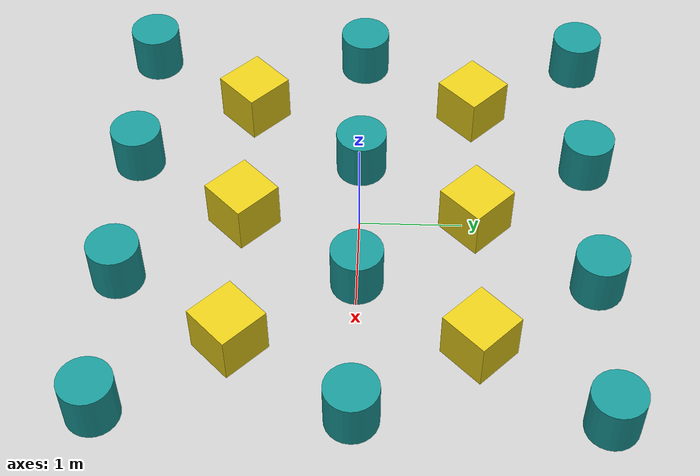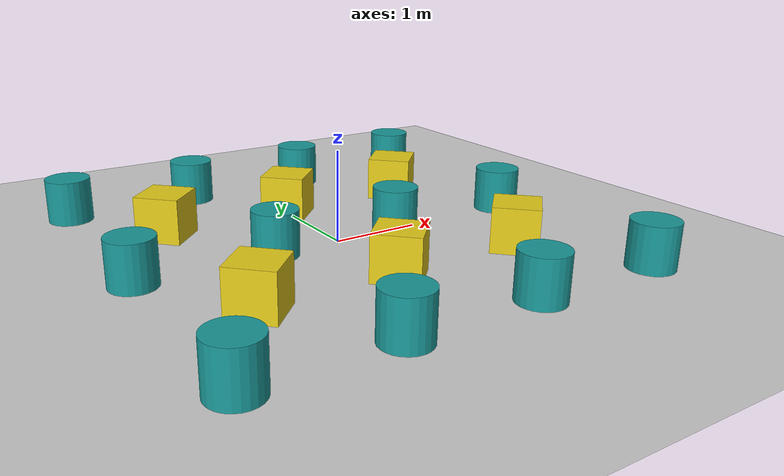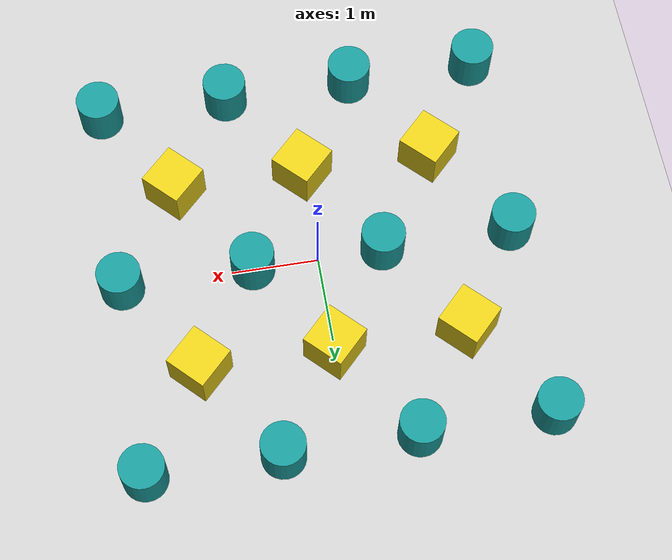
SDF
<sdf version="1.6">
 <world name="senaryo2_yogun">
  <physics type="ode">
   <max_step_size>0.001</max_step_size>
   <real_time_factor>1</real_time_factor>
   <real_time_update_rate>1000</real_time_update_rate>
  </physics>
  <scene><shadows>false</shadows></scene>
  <include><uri>model://ground_plane</uri></include>
  <include><uri>model://sun</uri></include>
  <model name="sutun_1">
   <static>true</static>
   <pose>-2.25 -2.25 0.25 0 0 0</pose>
   <link name="link">
    <collision name="collision">
     <geometry><cylinder><radius>0.25</radius><length>0.5</length></cylinder></geometry>
    </collision>
    <visual name="visual">
     <geometry><cylinder><radius>0.25</radius><length>0.5</length></cylinder></geometry>
     <material><ambient>0.1 0.6 0.6 1</ambient><diffuse>0.1 0.6 0.6 1</diffuse></material>
    </visual>
   </link>
  </model>
  <model name="sutun_2">
   <static>true</static>
   <pose>-0.75 -2.25 0.25 0 0 0</pose>
   <link name="link">
    <collision name="collision">
     <geometry><cylinder><radius>0.25</radius><length>0.5</length></cylinder></geometry>
    </collision>
    <visual name="visual">
     <geometry><cylinder><radius>0.25</radius><length>0.5</length></cylinder></geometry>
     <material><ambient>0.1 0.6 0.6 1</ambient><diffuse>0.1 0.6 0.6 1</diffuse></material>
    </visual>
   </link>
  </model>
  <model name="sutun_3">
   <static>true</static>
   <pose>0.75 -2.25 0.25 0 0 0</pose>
   <link name="link">
    <collision name="collision">
     <geometry><cylinder><radius>0.25</radius><length>0.5</length></cylinder></geometry>
    </collision>
    <visual name="visual">
     <geometry><cylinder><radius>0.25</radius><length>0.5</length></cylinder></geometry>
     <material><ambient>0.1 0.6 0.6 1</ambient><diffuse>0.1 0.6 0.6 1</diffuse></material>
    </visual>
   </link>
  </model>
  <model name="sutun_4">
   <static>true</static>
   <pose>2.25 -2.25 0.25 0 0 0</pose>
   <link name="link">
    <collision name="collision">
     <geometry><cylinder><radius>0.25</radius><length>0.5</length></cylinder></geometry>
    </collision>
    <visual name="visual">
     <geometry><cylinder><radius>0.25</radius><length>0.5</length></cylinder></geometry>
     <material><ambient>0.1 0.6 0.6 1</ambient><diffuse>0.1 0.6 0.6 1</diffuse></material>
    </visual>
   </link>
  </model>
  <model name="kutu_1">
   <static>true</static>
   <pose>-1.5 -1.125 0.25 0 0 0.7854</pose>
   <link name="link">
    <collision name="collision"><geometry><box><size>0.5 0.5 0.5</size></box></geometry></collision>
    <visual name="visual">
     <geometry><box><size>0.5 0.5 0.5</size></box></geometry>
     <material><ambient>0.9 0.8 0.1 1</ambient><diffuse>0.9 0.8 0.1 1</diffuse></material>
    </visual>
   </link>
  </model>
  <model name="kutu_2">
   <static>true</static>
   <pose>0.0 -1.125 0.25 0 0 0.7854</pose>
   <link name="link">
    <collision name="collision"><geometry><box><size>0.5 0.5 0.5</size></box></geometry></collision>
    <visual name="visual">
     <geometry><box><size>0.5 0.5 0.5</size></box></geometry>
     <material><ambient>0.9 0.8 0.1 1</ambient><diffuse>0.9 0.8 0.1 1</diffuse></material>
    </visual>
   </link>
  </model>
  <model name="kutu_3">
   <static>true</static>
   <pose>1.5 -1.125 0.25 0 0 0.7854</pose>
   <link name="link">
    <collision name="collision"><geometry><box><size>0.5 0.5 0.5</size></box></geometry></collision>
    <visual name="visual">
     <geometry><box><size>0.5 0.5 0.5</size></box></geometry>
     <material><ambient>0.9 0.8 0.1 1</ambient><diffuse>0.9 0.8 0.1 1</diffuse></material>
    </visual>
   </link>
  </model>
  <model name="sutun_5">
   <static>true</static>
   <pose>-2.25 0.0 0.25 0 0 0</pose>
   <link name="link">
    <collision name="collision">
     <geometry><cylinder><radius>0.25</radius><length>0.5</length></cylinder></geometry>
    </collision>
    <visual name="visual">
     <geometry><cylinder><radius>0.25</radius><length>0.5</length></cylinder></geometry>
     <material><ambient>0.1 0.6 0.6 1</ambient><diffuse>0.1 0.6 0.6 1</diffuse></material>
    </visual>
   </link>
  </model>
  <model name="sutun_6">
   <static>true</static>
   <pose>-0.75 0.0 0.25 0 0 0</pose>
   <link name="link">
    <collision name="collision">
     <geometry><cylinder><radius>0.25</radius><length>0.5</length></cylinder></geometry>
    </collision>
    <visual name="visual">
     <geometry><cylinder><radius>0.25</radius><length>0.5</length></cylinder></geometry>
     <material><ambient>0.1 0.6 0.6 1</ambient><diffuse>0.1 0.6 0.6 1</diffuse></material>
    </visual>
   </link>
  </model>
  <model name="sutun_7">
   <static>true</static>
   <pose>0.75 0.0 0.25 0 0 0</pose>
   <link name="link">
    <collision name="collision">
     <geometry><cylinder><radius>0.25</radius><length>0.5</length></cylinder></geometry>
    </collision>
    <visual name="visual">
     <geometry><cylinder><radius>0.25</radius><length>0.5</length></cylinder></geometry>
     <material><ambient>0.1 0.6 0.6 1</ambient><diffuse>0.1 0.6 0.6 1</diffuse></material>
    </visual>
   </link>
  </model>
  <model name="sutun_8">
   <static>true</static>
   <pose>2.25 0.0 0.25 0 0 0</pose>
   <link name="link">
    <collision name="collision">
     <geometry><cylinder><radius>0.25</radius><length>0.5</length></cylinder></geometry>
    </collision>
    <visual name="visual">
     <geometry><cylinder><radius>0.25</radius><length>0.5</length></cylinder></geometry>
     <material><ambient>0.1 0.6 0.6 1</ambient><diffuse>0.1 0.6 0.6 1</diffuse></material>
    </visual>
   </link>
  </model>
  <model name="kutu_4">
   <static>true</static>
   <pose>-1.5 1.125 0.25 0 0 0.7854</pose>
   <link name="link">
    <collision name="collision"><geometry><box><size>0.5 0.5 0.5</size></box></geometry></collision>
    <visual name="visual">
     <geometry><box><size>0.5 0.5 0.5</size></box></geometry>
     <material><ambient>0.9 0.8 0.1 1</ambient><diffuse>0.9 0.8 0.1 1</diffuse></material>
    </visual>
   </link>
  </model>
  <model name="kutu_5">
   <static>true</static>
   <pose>0.0 1.125 0.25 0 0 0.7854</pose>
   <link name="link">
    <collision name="collision"><geometry><box><size>0.5 0.5 0.5</size></box></geometry></collision>
    <visual name="visual">
     <geometry><box><size>0.5 0.5 0.5</size></box></geometry>
     <material><ambient>0.9 0.8 0.1 1</ambient><diffuse>0.9 0.8 0.1 1</diffuse></material>
    </visual>
   </link>
  </model>
  <model name="kutu_6">
   <static>true</static>
   <pose>1.5 1.125 0.25 0 0 0.7854</pose>
   <link name="link">
    <collision name="collision"><geometry><box><size>0.5 0.5 0.5</size></box></geometry></collision>
    <visual name="visual">
     <geometry><box><size>0.5 0.5 0.5</size></box></geometry>
     <material><ambient>0.9 0.8 0.1 1</ambient><diffuse>0.9 0.8 0.1 1</diffuse></material>
    </visual>
   </link>
  </model>
  <model name="sutun_9">
   <static>true</static>
   <pose>-2.25 2.25 0.25 0 0 0</pose>
   <link name="link">
    <collision name="collision">
     <geometry><cylinder><radius>0.25</radius><length>0.5</length></cylinder></geometry>
    </collision>
    <visual name="visual">
     <geometry><cylinder><radius>0.25</radius><length>0.5</length></cylinder></geometry>
     <material><ambient>0.1 0.6 0.6 1</ambient><diffuse>0.1 0.6 0.6 1</diffuse></material>
    </visual>
   </link>
  </model>
  <model name="sutun_10">
   <static>true</static>
   <pose>-0.75 2.25 0.25 0 0 0</pose>
   <link name="link">
    <collision name="collision">
     <geometry><cylinder><radius>0.25</radius><length>0.5</length></cylinder></geometry>
    </collision>
    <visual name="visual">
     <geometry><cylinder><radius>0.25</radius><length>0.5</length></cylinder></geometry>
     <material><ambient>0.1 0.6 0.6 1</ambient><diffuse>0.1 0.6 0.6 1</diffuse></material>
    </visual>
   </link>
  </model>
  <model name="sutun_11">
   <static>true</static>
   <pose>0.75 2.25 0.25 0 0 0</pose>
   <link name="link">
    <collision name="collision">
     <geometry><cylinder><radius>0.25</radius><length>0.5</length></cylinder></geometry>
    </collision>
    <visual name="visual">
     <geometry><cylinder><radius>0.25</radius><length>0.5</length></cylinder></geometry>
     <material><ambient>0.1 0.6 0.6 1</ambient><diffuse>0.1 0.6 0.6 1</diffuse></material>
    </visual>
   </link>
  </model>
  <model name="sutun_12">
   <static>true</static>
   <pose>2.25 2.25 0.25 0 0 0</pose>
   <link name="link">
    <collision name="collision">
     <geometry><cylinder><radius>0.25</radius><length>0.5</length></cylinder></geometry>
    </collision>
    <visual name="visual">
     <geometry><cylinder><radius>0.25</radius><length>0.5</length></cylinder></geometry>
     <material><ambient>0.1 0.6 0.6 1</ambient><diffuse>0.1 0.6 0.6 1</diffuse></material>
    </visual>
   </link>
  </model>
 </world>
</sdf>
